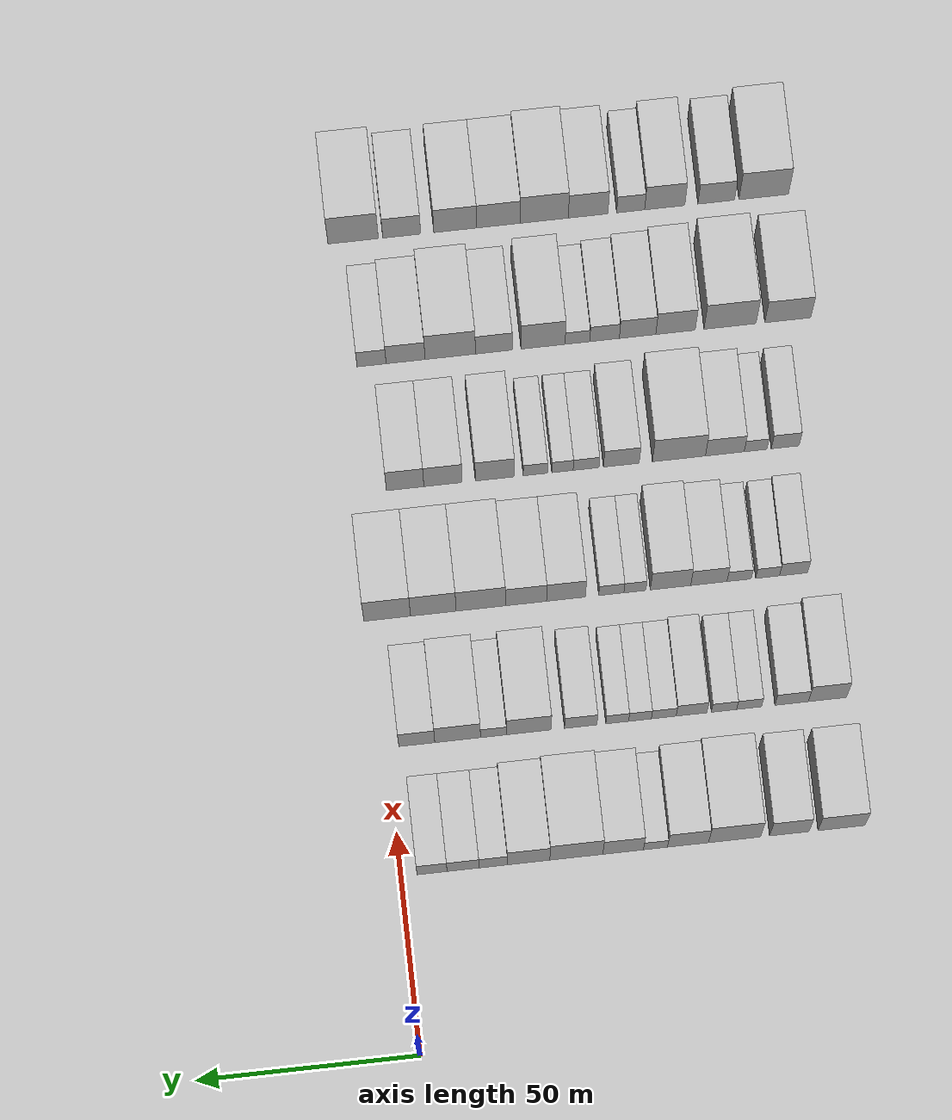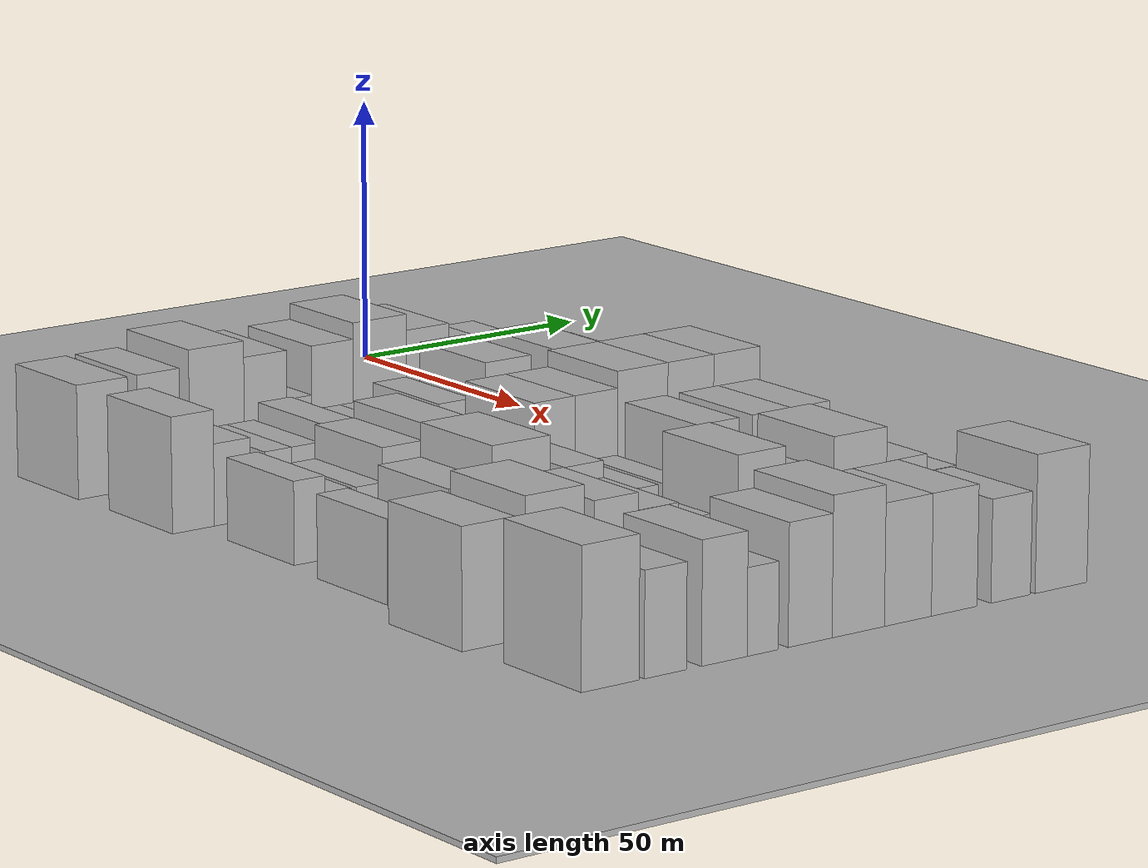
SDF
<sdf version="1.6">
 <world name="default">
  <include><name>ground_plane_1</name><uri>model://HANNAS_ground_plane</uri></include>
  <include>
   <name>ground_plane_2</name>
   <uri>model://HANNAS_ground_plane</uri>
   <pose>100 0 0  0 0 0</pose>
  </include>
  <model name="building_47">
   <static>1</static>
   <pose>50.0000 -98.2842 0 0.000000 0.000000 0.000000</pose>
   <link name="link">
    <pose>0 0 10.50 0 0 0</pose>
    <collision name="collision"><geometry><box><size>20.0000 10.4719 21.0000</size></box></geometry></collision>
    <visual name="visual">
     <cast_shadows>0</cast_shadows>
     <geometry><box><size>20.0000 10.4719 21.0000</size></box></geometry>
     <material>
      <script>
       <uri>model://HANNAS_wall/materials/scripts</uri>
       <uri>model://HANNAS_wall/materials/textures</uri>
       <name>vrc/HANNAS_wall</name>
      </script>
     </material>
    </visual>
   </link>
  </model>
  <model name="building_48">
   <static>1</static>
   <pose>50.0000 -86.6342 0 0.000000 0.000000 0.000000</pose>
   <link name="link">
    <pose>0 0 10.50 0 0 0</pose>
    <collision name="collision"><geometry><box><size>20.0000 8.8280 21.0000</size></box></geometry></collision>
    <visual name="visual">
     <cast_shadows>0</cast_shadows>
     <geometry><box><size>20.0000 8.8280 21.0000</size></box></geometry>
     <material>
      <script>
       <uri>model://HANNAS_wall/materials/scripts</uri>
       <uri>model://HANNAS_wall/materials/textures</uri>
       <name>vrc/HANNAS_wall</name>
      </script>
     </material>
    </visual>
   </link>
  </model>
  <model name="building_49">
   <static>1</static>
   <pose>50.0000 -74.3957 0 0.000000 0.000000 0.000000</pose>
   <link name="link">
    <pose>0 0 12.00 0 0 0</pose>
    <collision name="collision"><geometry><box><size>20.0000 11.6490 24.0000</size></box></geometry></collision>
    <visual name="visual">
     <cast_shadows>0</cast_shadows>
     <geometry><box><size>20.0000 11.6490 24.0000</size></box></geometry>
     <material>
      <script>
       <uri>model://HANNAS_wall/materials/scripts</uri>
       <uri>model://HANNAS_wall/materials/textures</uri>
       <name>vrc/HANNAS_wall</name>
      </script>
     </material>
    </visual>
   </link>
  </model>
  <model name="building_50">
   <static>1</static>
   <pose>50.0000 -63.9907 0 0.000000 0.000000 0.000000</pose>
   <link name="link">
    <pose>0 0 10.50 0 0 0</pose>
    <collision name="collision"><geometry><box><size>20.0000 9.1611 21.0000</size></box></geometry></collision>
    <visual name="visual">
     <cast_shadows>0</cast_shadows>
     <geometry><box><size>20.0000 9.1611 21.0000</size></box></geometry>
     <material>
      <script>
       <uri>model://HANNAS_wall/materials/scripts</uri>
       <uri>model://HANNAS_wall/materials/textures</uri>
       <name>vrc/HANNAS_wall</name>
      </script>
     </material>
    </visual>
   </link>
  </model>
  <model name="building_51">
   <static>1</static>
   <pose>50.0000 -56.7197 0 0.000000 0.000000 0.000000</pose>
   <link name="link">
    <pose>0 0 6.00 0 0 0</pose>
    <collision name="collision"><geometry><box><size>20.0000 5.3809 12.0000</size></box></geometry></collision>
    <visual name="visual">
     <cast_shadows>0</cast_shadows>
     <geometry><box><size>20.0000 5.3809 12.0000</size></box></geometry>
     <material>
      <script>
       <uri>model://HANNAS_wall/materials/scripts</uri>
       <uri>model://HANNAS_wall/materials/textures</uri>
       <name>vrc/HANNAS_wall</name>
      </script>
     </material>
    </visual>
   </link>
  </model>
  <model name="building_52">
   <static>1</static>
   <pose>50.0000 -49.4924 0 0.000000 0.000000 0.000000</pose>
   <link name="link">
    <pose>0 0 10.50 0 0 0</pose>
    <collision name="collision"><geometry><box><size>20.0000 9.0737 21.0000</size></box></geometry></collision>
    <visual name="visual">
     <cast_shadows>0</cast_shadows>
     <geometry><box><size>20.0000 9.0737 21.0000</size></box></geometry>
     <material>
      <script>
       <uri>model://HANNAS_wall/materials/scripts</uri>
       <uri>model://HANNAS_wall/materials/textures</uri>
       <name>vrc/HANNAS_wall</name>
      </script>
     </material>
    </visual>
   </link>
  </model>
  <model name="building_53">
   <static>1</static>
   <pose>50.0000 -39.0393 0 0.000000 0.000000 0.000000</pose>
   <link name="link">
    <pose>0 0 12.00 0 0 0</pose>
    <collision name="collision"><geometry><box><size>20.0000 11.8326 24.0000</size></box></geometry></collision>
    <visual name="visual">
     <cast_shadows>0</cast_shadows>
     <geometry><box><size>20.0000 11.8326 24.0000</size></box></geometry>
     <material>
      <script>
       <uri>model://HANNAS_wall/materials/scripts</uri>
       <uri>model://HANNAS_wall/materials/textures</uri>
       <name>vrc/HANNAS_wall</name>
      </script>
     </material>
    </visual>
   </link>
  </model>
  <model name="building_54">
   <static>1</static>
   <pose>50.0000 -28.3879 0 0.000000 0.000000 0.000000</pose>
   <link name="link">
    <pose>0 0 10.50 0 0 0</pose>
    <collision name="collision"><geometry><box><size>20.0000 9.4702 21.0000</size></box></geometry></collision>
    <visual name="visual">
     <cast_shadows>0</cast_shadows>
     <geometry><box><size>20.0000 9.4702 21.0000</size></box></geometry>
     <material>
      <script>
       <uri>model://HANNAS_wall/materials/scripts</uri>
       <uri>model://HANNAS_wall/materials/textures</uri>
       <name>vrc/HANNAS_wall</name>
      </script>
     </material>
    </visual>
   </link>
  </model>
  <model name="building_55">
   <static>1</static>
   <pose>50.0000 -20.5036 0 0.000000 0.000000 0.000000</pose>
   <link name="link">
    <pose>0 0 7.50 0 0 0</pose>
    <collision name="collision"><geometry><box><size>20.0000 6.2984 15.0000</size></box></geometry></collision>
    <visual name="visual">
     <cast_shadows>0</cast_shadows>
     <geometry><box><size>20.0000 6.2984 15.0000</size></box></geometry>
     <material>
      <script>
       <uri>model://HANNAS_wall/materials/scripts</uri>
       <uri>model://HANNAS_wall/materials/textures</uri>
       <name>vrc/HANNAS_wall</name>
      </script>
     </material>
    </visual>
   </link>
  </model>
  <model name="building_56">
   <static>1</static>
   <pose>50.0000 -13.7806 0 0.000000 0.000000 0.000000</pose>
   <link name="link">
    <pose>0 0 7.50 0 0 0</pose>
    <collision name="collision"><geometry><box><size>20.0000 7.1475 15.0000</size></box></geometry></collision>
    <visual name="visual">
     <cast_shadows>0</cast_shadows>
     <geometry><box><size>20.0000 7.1475 15.0000</size></box></geometry>
     <material>
      <script>
       <uri>model://HANNAS_wall/materials/scripts</uri>
       <uri>model://HANNAS_wall/materials/textures</uri>
       <name>vrc/HANNAS_wall</name>
      </script>
     </material>
    </visual>
   </link>
  </model>
  <model name="building_57">
   <static>1</static>
   <pose>50.0000 -6.8597 0 0.000000 0.000000 0.000000</pose>
   <link name="link">
    <pose>0 0 7.50 0 0 0</pose>
    <collision name="collision"><geometry><box><size>20.0000 6.6944 15.0000</size></box></geometry></collision>
    <visual name="visual">
     <cast_shadows>0</cast_shadows>
     <geometry><box><size>20.0000 6.6944 15.0000</size></box></geometry>
     <material>
      <script>
       <uri>model://HANNAS_wall/materials/scripts</uri>
       <uri>model://HANNAS_wall/materials/textures</uri>
       <name>vrc/HANNAS_wall</name>
      </script>
     </material>
    </visual>
   </link>
  </model>
  <model name="building_160">
   <static>1</static>
   <pose>79.0000 -98.6693 0 0.000000 0.000000 0.000000</pose>
   <link name="link">
    <pose>0 0 10.50 0 0 0</pose>
    <collision name="collision"><geometry><box><size>20.0000 8.5805 21.0000</size></box></geometry></collision>
    <visual name="visual">
     <cast_shadows>0</cast_shadows>
     <geometry><box><size>20.0000 8.5805 21.0000</size></box></geometry>
     <material>
      <script>
       <uri>model://HANNAS_wall/materials/scripts</uri>
       <uri>model://HANNAS_wall/materials/textures</uri>
       <name>vrc/HANNAS_wall</name>
      </script>
     </material>
    </visual>
   </link>
  </model>
  <model name="building_161">
   <static>1</static>
   <pose>79.0000 -90.6305 0 0.000000 0.000000 0.000000</pose>
   <link name="link">
    <pose>0 0 7.50 0 0 0</pose>
    <collision name="collision"><geometry><box><size>20.0000 7.4971 15.0000</size></box></geometry></collision>
    <visual name="visual">
     <cast_shadows>0</cast_shadows>
     <geometry><box><size>20.0000 7.4971 15.0000</size></box></geometry>
     <material>
      <script>
       <uri>model://HANNAS_wall/materials/scripts</uri>
       <uri>model://HANNAS_wall/materials/textures</uri>
       <name>vrc/HANNAS_wall</name>
      </script>
     </material>
    </visual>
   </link>
  </model>
  <model name="building_162">
   <static>1</static>
   <pose>79.0000 -81.0834 0 0.000000 0.000000 0.000000</pose>
   <link name="link">
    <pose>0 0 6.00 0 0 0</pose>
    <collision name="collision"><geometry><box><size>20.0000 5.5971 12.0000</size></box></geometry></collision>
    <visual name="visual">
     <cast_shadows>0</cast_shadows>
     <geometry><box><size>20.0000 5.5971 12.0000</size></box></geometry>
     <material>
      <script>
       <uri>model://HANNAS_wall/materials/scripts</uri>
       <uri>model://HANNAS_wall/materials/textures</uri>
       <name>vrc/HANNAS_wall</name>
      </script>
     </material>
    </visual>
   </link>
  </model>
  <model name="building_163">
   <static>1</static>
   <pose>79.0000 -75.4470 0 0.000000 0.000000 0.000000</pose>
   <link name="link">
    <pose>0 0 6.00 0 0 0</pose>
    <collision name="collision"><geometry><box><size>20.0000 5.6757 12.0000</size></box></geometry></collision>
    <visual name="visual">
     <cast_shadows>0</cast_shadows>
     <geometry><box><size>20.0000 5.6757 12.0000</size></box></geometry>
     <material>
      <script>
       <uri>model://HANNAS_wall/materials/scripts</uri>
       <uri>model://HANNAS_wall/materials/textures</uri>
       <name>vrc/HANNAS_wall</name>
      </script>
     </material>
    </visual>
   </link>
  </model>
  <model name="building_164">
   <static>1</static>
   <pose>79.0000 -68.1666 0 0.000000 0.000000 0.000000</pose>
   <link name="link">
    <pose>0 0 7.50 0 0 0</pose>
    <collision name="collision"><geometry><box><size>20.0000 6.8850 15.0000</size></box></geometry></collision>
    <visual name="visual">
     <cast_shadows>0</cast_shadows>
     <geometry><box><size>20.0000 6.8850 15.0000</size></box></geometry>
     <material>
      <script>
       <uri>model://HANNAS_wall/materials/scripts</uri>
       <uri>model://HANNAS_wall/materials/textures</uri>
       <name>vrc/HANNAS_wall</name>
      </script>
     </material>
    </visual>
   </link>
  </model>
  <model name="building_165">
   <static>1</static>
   <pose>79.0000 -61.9334 0 0.000000 0.000000 0.000000</pose>
   <link name="link">
    <pose>0 0 6.00 0 0 0</pose>
    <collision name="collision"><geometry><box><size>20.0000 5.5814 12.0000</size></box></geometry></collision>
    <visual name="visual">
     <cast_shadows>0</cast_shadows>
     <geometry><box><size>20.0000 5.5814 12.0000</size></box></geometry>
     <material>
      <script>
       <uri>model://HANNAS_wall/materials/scripts</uri>
       <uri>model://HANNAS_wall/materials/textures</uri>
       <name>vrc/HANNAS_wall</name>
      </script>
     </material>
    </visual>
   </link>
  </model>
  <model name="building_166">
   <static>1</static>
   <pose>79.0000 -56.6026 0 0.000000 0.000000 0.000000</pose>
   <link name="link">
    <pose>0 0 6.00 0 0 0</pose>
    <collision name="collision"><geometry><box><size>20.0000 5.0803 12.0000</size></box></geometry></collision>
    <visual name="visual">
     <cast_shadows>0</cast_shadows>
     <geometry><box><size>20.0000 5.0803 12.0000</size></box></geometry>
     <material>
      <script>
       <uri>model://HANNAS_wall/materials/scripts</uri>
       <uri>model://HANNAS_wall/materials/textures</uri>
       <name>vrc/HANNAS_wall</name>
      </script>
     </material>
    </visual>
   </link>
  </model>
  <model name="building_167">
   <static>1</static>
   <pose>79.0000 -51.5035 0 0.000000 0.000000 0.000000</pose>
   <link name="link">
    <pose>0 0 6.00 0 0 0</pose>
    <collision name="collision"><geometry><box><size>20.0000 5.1178 12.0000</size></box></geometry></collision>
    <visual name="visual">
     <cast_shadows>0</cast_shadows>
     <geometry><box><size>20.0000 5.1178 12.0000</size></box></geometry>
     <material>
      <script>
       <uri>model://HANNAS_wall/materials/scripts</uri>
       <uri>model://HANNAS_wall/materials/textures</uri>
       <name>vrc/HANNAS_wall</name>
      </script>
     </material>
    </visual>
   </link>
  </model>
  <model name="building_168">
   <static>1</static>
   <pose>79.0000 -43.3079 0 0.000000 0.000000 0.000000</pose>
   <link name="link">
    <pose>0 0 7.50 0 0 0</pose>
    <collision name="collision"><geometry><box><size>20.0000 7.2734 15.0000</size></box></geometry></collision>
    <visual name="visual">
     <cast_shadows>0</cast_shadows>
     <geometry><box><size>20.0000 7.2734 15.0000</size></box></geometry>
     <material>
      <script>
       <uri>model://HANNAS_wall/materials/scripts</uri>
       <uri>model://HANNAS_wall/materials/textures</uri>
       <name>vrc/HANNAS_wall</name>
      </script>
     </material>
    </visual>
   </link>
  </model>
  <model name="building_169">
   <static>1</static>
   <pose>79.0000 -31.6688 0 0.000000 0.000000 0.000000</pose>
   <link name="link">
    <pose>0 0 10.50 0 0 0</pose>
    <collision name="collision"><geometry><box><size>20.0000 10.0048 21.0000</size></box></geometry></collision>
    <visual name="visual">
     <cast_shadows>0</cast_shadows>
     <geometry><box><size>20.0000 10.0048 21.0000</size></box></geometry>
     <material>
      <script>
       <uri>model://HANNAS_wall/materials/scripts</uri>
       <uri>model://HANNAS_wall/materials/textures</uri>
       <name>vrc/HANNAS_wall</name>
      </script>
     </material>
    </visual>
   </link>
  </model>
  <model name="building_170">
   <static>1</static>
   <pose>79.0000 -23.7561 0 0.000000 0.000000 0.000000</pose>
   <link name="link">
    <pose>0 0 6.00 0 0 0</pose>
    <collision name="collision"><geometry><box><size>20.0000 5.8207 12.0000</size></box></geometry></collision>
    <visual name="visual">
     <cast_shadows>0</cast_shadows>
     <geometry><box><size>20.0000 5.8207 12.0000</size></box></geometry>
     <material>
      <script>
       <uri>model://HANNAS_wall/materials/scripts</uri>
       <uri>model://HANNAS_wall/materials/textures</uri>
       <name>vrc/HANNAS_wall</name>
      </script>
     </material>
    </visual>
   </link>
  </model>
  <model name="building_171">
   <static>1</static>
   <pose>79.0000 -15.7311 0 0.000000 0.000000 0.000000</pose>
   <link name="link">
    <pose>0 0 10.50 0 0 0</pose>
    <collision name="collision"><geometry><box><size>20.0000 10.2292 21.0000</size></box></geometry></collision>
    <visual name="visual">
     <cast_shadows>0</cast_shadows>
     <geometry><box><size>20.0000 10.2292 21.0000</size></box></geometry>
     <material>
      <script>
       <uri>model://HANNAS_wall/materials/scripts</uri>
       <uri>model://HANNAS_wall/materials/textures</uri>
       <name>vrc/HANNAS_wall</name>
      </script>
     </material>
    </visual>
   </link>
  </model>
  <model name="building_172">
   <static>1</static>
   <pose>79.0000 -6.5986 0 0.000000 0.000000 0.000000</pose>
   <link name="link">
    <pose>0 0 9.00 0 0 0</pose>
    <collision name="collision"><geometry><box><size>20.0000 8.0359 18.0000</size></box></geometry></collision>
    <visual name="visual">
     <cast_shadows>0</cast_shadows>
     <geometry><box><size>20.0000 8.0359 18.0000</size></box></geometry>
     <material>
      <script>
       <uri>model://HANNAS_wall/materials/scripts</uri>
       <uri>model://HANNAS_wall/materials/textures</uri>
       <name>vrc/HANNAS_wall</name>
      </script>
     </material>
    </visual>
   </link>
  </model>
  <model name="building_280">
   <static>1</static>
   <pose>108.0000 -94.5423 0 0.000000 0.000000 0.000000</pose>
   <link name="link">
    <pose>0 0 7.50 0 0 0</pose>
    <collision name="collision"><geometry><box><size>20.0000 6.3312 15.0000</size></box></geometry></collision>
    <visual name="visual">
     <cast_shadows>0</cast_shadows>
     <geometry><box><size>20.0000 6.3312 15.0000</size></box></geometry>
     <material>
      <script>
       <uri>model://HANNAS_wall/materials/scripts</uri>
       <uri>model://HANNAS_wall/materials/textures</uri>
       <name>vrc/HANNAS_wall</name>
      </script>
     </material>
    </visual>
   </link>
  </model>
  <model name="building_281">
   <static>1</static>
   <pose>108.0000 -88.6936 0 0.000000 0.000000 0.000000</pose>
   <link name="link">
    <pose>0 0 6.00 0 0 0</pose>
    <collision name="collision"><geometry><box><size>20.0000 5.3664 12.0000</size></box></geometry></collision>
    <visual name="visual">
     <cast_shadows>0</cast_shadows>
     <geometry><box><size>20.0000 5.3664 12.0000</size></box></geometry>
     <material>
      <script>
       <uri>model://HANNAS_wall/materials/scripts</uri>
       <uri>model://HANNAS_wall/materials/textures</uri>
       <name>vrc/HANNAS_wall</name>
      </script>
     </material>
    </visual>
   </link>
  </model>
  <model name="building_282">
   <static>1</static>
   <pose>108.0000 -82.2794 0 0.000000 0.000000 0.000000</pose>
   <link name="link">
    <pose>0 0 6.00 0 0 0</pose>
    <collision name="collision"><geometry><box><size>20.0000 5.4619 12.0000</size></box></geometry></collision>
    <visual name="visual">
     <cast_shadows>0</cast_shadows>
     <geometry><box><size>20.0000 5.4619 12.0000</size></box></geometry>
     <material>
      <script>
       <uri>model://HANNAS_wall/materials/scripts</uri>
       <uri>model://HANNAS_wall/materials/textures</uri>
       <name>vrc/HANNAS_wall</name>
      </script>
     </material>
    </visual>
   </link>
  </model>
  <model name="building_283">
   <static>1</static>
   <pose>108.0000 -75.4573 0 0.000000 0.000000 0.000000</pose>
   <link name="link">
    <pose>0 0 9.00 0 0 0</pose>
    <collision name="collision"><geometry><box><size>20.0000 8.1824 18.0000</size></box></geometry></collision>
    <visual name="visual">
     <cast_shadows>0</cast_shadows>
     <geometry><box><size>20.0000 8.1824 18.0000</size></box></geometry>
     <material>
      <script>
       <uri>model://HANNAS_wall/materials/scripts</uri>
       <uri>model://HANNAS_wall/materials/textures</uri>
       <name>vrc/HANNAS_wall</name>
      </script>
     </material>
    </visual>
   </link>
  </model>
  <model name="building_284">
   <static>1</static>
   <pose>108.0000 -66.8131 0 0.000000 0.000000 0.000000</pose>
   <link name="link">
    <pose>0 0 10.50 0 0 0</pose>
    <collision name="collision"><geometry><box><size>20.0000 9.1059 21.0000</size></box></geometry></collision>
    <visual name="visual">
     <cast_shadows>0</cast_shadows>
     <geometry><box><size>20.0000 9.1059 21.0000</size></box></geometry>
     <material>
      <script>
       <uri>model://HANNAS_wall/materials/scripts</uri>
       <uri>model://HANNAS_wall/materials/textures</uri>
       <name>vrc/HANNAS_wall</name>
      </script>
     </material>
    </visual>
   </link>
  </model>
  <model name="building_285">
   <static>1</static>
   <pose>108.0000 -58.7935 0 0.000000 0.000000 0.000000</pose>
   <link name="link">
    <pose>0 0 6.00 0 0 0</pose>
    <collision name="collision"><geometry><box><size>20.0000 4.9332 12.0000</size></box></geometry></collision>
    <visual name="visual">
     <cast_shadows>0</cast_shadows>
     <geometry><box><size>20.0000 4.9332 12.0000</size></box></geometry>
     <material>
      <script>
       <uri>model://HANNAS_wall/materials/scripts</uri>
       <uri>model://HANNAS_wall/materials/textures</uri>
       <name>vrc/HANNAS_wall</name>
      </script>
     </material>
    </visual>
   </link>
  </model>
  <model name="building_286">
   <static>1</static>
   <pose>108.0000 -53.4880 0 0.000000 0.000000 0.000000</pose>
   <link name="link">
    <pose>0 0 6.00 0 0 0</pose>
    <collision name="collision"><geometry><box><size>20.0000 5.6777 12.0000</size></box></geometry></collision>
    <visual name="visual">
     <cast_shadows>0</cast_shadows>
     <geometry><box><size>20.0000 5.6777 12.0000</size></box></geometry>
     <material>
      <script>
       <uri>model://HANNAS_wall/materials/scripts</uri>
       <uri>model://HANNAS_wall/materials/textures</uri>
       <name>vrc/HANNAS_wall</name>
      </script>
     </material>
    </visual>
   </link>
  </model>
  <model name="building_287">
   <static>1</static>
   <pose>108.0000 -43.2713 0 0.000000 0.000000 0.000000</pose>
   <link name="link">
    <pose>0 0 10.50 0 0 0</pose>
    <collision name="collision"><geometry><box><size>20.0000 8.7558 21.0000</size></box></geometry></collision>
    <visual name="visual">
     <cast_shadows>0</cast_shadows>
     <geometry><box><size>20.0000 8.7558 21.0000</size></box></geometry>
     <material>
      <script>
       <uri>model://HANNAS_wall/materials/scripts</uri>
       <uri>model://HANNAS_wall/materials/textures</uri>
       <name>vrc/HANNAS_wall</name>
      </script>
     </material>
    </visual>
   </link>
  </model>
  <model name="building_288">
   <static>1</static>
   <pose>108.0000 -34.2629 0 0.000000 0.000000 0.000000</pose>
   <link name="link">
    <pose>0 0 10.50 0 0 0</pose>
    <collision name="collision"><geometry><box><size>20.0000 9.2611 21.0000</size></box></geometry></collision>
    <visual name="visual">
     <cast_shadows>0</cast_shadows>
     <geometry><box><size>20.0000 9.2611 21.0000</size></box></geometry>
     <material>
      <script>
       <uri>model://HANNAS_wall/materials/scripts</uri>
       <uri>model://HANNAS_wall/materials/textures</uri>
       <name>vrc/HANNAS_wall</name>
      </script>
     </material>
    </visual>
   </link>
  </model>
  <model name="building_289">
   <static>1</static>
   <pose>108.0000 -24.0927 0 0.000000 0.000000 0.000000</pose>
   <link name="link">
    <pose>0 0 12.00 0 0 0</pose>
    <collision name="collision"><geometry><box><size>20.0000 11.0793 24.0000</size></box></geometry></collision>
    <visual name="visual">
     <cast_shadows>0</cast_shadows>
     <geometry><box><size>20.0000 11.0793 24.0000</size></box></geometry>
     <material>
      <script>
       <uri>model://HANNAS_wall/materials/scripts</uri>
       <uri>model://HANNAS_wall/materials/textures</uri>
       <name>vrc/HANNAS_wall</name>
      </script>
     </material>
    </visual>
   </link>
  </model>
  <model name="building_290">
   <static>1</static>
   <pose>108.0000 -13.4372 0 0.000000 0.000000 0.000000</pose>
   <link name="link">
    <pose>0 0 12.00 0 0 0</pose>
    <collision name="collision"><geometry><box><size>20.0000 10.2318 24.0000</size></box></geometry></collision>
    <visual name="visual">
     <cast_shadows>0</cast_shadows>
     <geometry><box><size>20.0000 10.2318 24.0000</size></box></geometry>
     <material>
      <script>
       <uri>model://HANNAS_wall/materials/scripts</uri>
       <uri>model://HANNAS_wall/materials/textures</uri>
       <name>vrc/HANNAS_wall</name>
      </script>
     </material>
    </visual>
   </link>
  </model>
  <model name="building_291">
   <static>1</static>
   <pose>108.0000 -3.0869 0 0.000000 0.000000 0.000000</pose>
   <link name="link">
    <pose>0 0 12.00 0 0 0</pose>
    <collision name="collision"><geometry><box><size>20.0000 10.4687 24.0000</size></box></geometry></collision>
    <visual name="visual">
     <cast_shadows>0</cast_shadows>
     <geometry><box><size>20.0000 10.4687 24.0000</size></box></geometry>
     <material>
      <script>
       <uri>model://HANNAS_wall/materials/scripts</uri>
       <uri>model://HANNAS_wall/materials/textures</uri>
       <name>vrc/HANNAS_wall</name>
      </script>
     </material>
    </visual>
   </link>
  </model>
  <model name="building_392">
   <static>1</static>
   <pose>137.0000 -96.1260 0 0.000000 0.000000 0.000000</pose>
   <link name="link">
    <pose>0 0 7.50 0 0 0</pose>
    <collision name="collision"><geometry><box><size>20.0000 6.2830 15.0000</size></box></geometry></collision>
    <visual name="visual">
     <cast_shadows>0</cast_shadows>
     <geometry><box><size>20.0000 6.2830 15.0000</size></box></geometry>
     <material>
      <script>
       <uri>model://HANNAS_wall/materials/scripts</uri>
       <uri>model://HANNAS_wall/materials/textures</uri>
       <name>vrc/HANNAS_wall</name>
      </script>
     </material>
    </visual>
   </link>
  </model>
  <model name="building_393">
   <static>1</static>
   <pose>137.0000 -89.4196 0 0.000000 0.000000 0.000000</pose>
   <link name="link">
    <pose>0 0 6.00 0 0 0</pose>
    <collision name="collision"><geometry><box><size>20.0000 5.1297 12.0000</size></box></geometry></collision>
    <visual name="visual">
     <cast_shadows>0</cast_shadows>
     <geometry><box><size>20.0000 5.1297 12.0000</size></box></geometry>
     <material>
      <script>
       <uri>model://HANNAS_wall/materials/scripts</uri>
       <uri>model://HANNAS_wall/materials/textures</uri>
       <name>vrc/HANNAS_wall</name>
      </script>
     </material>
    </visual>
   </link>
  </model>
  <model name="building_394">
   <static>1</static>
   <pose>137.0000 -82.4676 0 0.000000 0.000000 0.000000</pose>
   <link name="link">
    <pose>0 0 9.00 0 0 0</pose>
    <collision name="collision"><geometry><box><size>20.0000 8.7743 18.0000</size></box></geometry></collision>
    <visual name="visual">
     <cast_shadows>0</cast_shadows>
     <geometry><box><size>20.0000 8.7743 18.0000</size></box></geometry>
     <material>
      <script>
       <uri>model://HANNAS_wall/materials/scripts</uri>
       <uri>model://HANNAS_wall/materials/textures</uri>
       <name>vrc/HANNAS_wall</name>
      </script>
     </material>
    </visual>
   </link>
  </model>
  <model name="building_395">
   <static>1</static>
   <pose>137.0000 -72.0894 0 0.000000 0.000000 0.000000</pose>
   <link name="link">
    <pose>0 0 12.00 0 0 0</pose>
    <collision name="collision"><geometry><box><size>20.0000 11.9821 24.0000</size></box></geometry></collision>
    <visual name="visual">
     <cast_shadows>0</cast_shadows>
     <geometry><box><size>20.0000 11.9821 24.0000</size></box></geometry>
     <material>
      <script>
       <uri>model://HANNAS_wall/materials/scripts</uri>
       <uri>model://HANNAS_wall/materials/textures</uri>
       <name>vrc/HANNAS_wall</name>
      </script>
     </material>
    </visual>
   </link>
  </model>
  <model name="building_396">
   <static>1</static>
   <pose>137.0000 -59.0591 0 0.000000 0.000000 0.000000</pose>
   <link name="link">
    <pose>0 0 9.00 0 0 0</pose>
    <collision name="collision"><geometry><box><size>20.0000 8.0787 18.0000</size></box></geometry></collision>
    <visual name="visual">
     <cast_shadows>0</cast_shadows>
     <geometry><box><size>20.0000 8.0787 18.0000</size></box></geometry>
     <material>
      <script>
       <uri>model://HANNAS_wall/materials/scripts</uri>
       <uri>model://HANNAS_wall/materials/textures</uri>
       <name>vrc/HANNAS_wall</name>
      </script>
     </material>
    </visual>
   </link>
  </model>
  <model name="building_397">
   <static>1</static>
   <pose>137.0000 -51.0906 0 0.000000 0.000000 0.000000</pose>
   <link name="link">
    <pose>0 0 6.00 0 0 0</pose>
    <collision name="collision"><geometry><box><size>20.0000 5.8583 12.0000</size></box></geometry></collision>
    <visual name="visual">
     <cast_shadows>0</cast_shadows>
     <geometry><box><size>20.0000 5.8583 12.0000</size></box></geometry>
     <material>
      <script>
       <uri>model://HANNAS_wall/materials/scripts</uri>
       <uri>model://HANNAS_wall/materials/textures</uri>
       <name>vrc/HANNAS_wall</name>
      </script>
     </material>
    </visual>
   </link>
  </model>
  <model name="building_398">
   <static>1</static>
   <pose>137.0000 -45.7578 0 0.000000 0.000000 0.000000</pose>
   <link name="link">
    <pose>0 0 6.00 0 0 0</pose>
    <collision name="collision"><geometry><box><size>20.0000 4.8073 12.0000</size></box></geometry></collision>
    <visual name="visual">
     <cast_shadows>0</cast_shadows>
     <geometry><box><size>20.0000 4.8073 12.0000</size></box></geometry>
     <material>
      <script>
       <uri>model://HANNAS_wall/materials/scripts</uri>
       <uri>model://HANNAS_wall/materials/textures</uri>
       <name>vrc/HANNAS_wall</name>
      </script>
     </material>
    </visual>
   </link>
  </model>
  <model name="building_399">
   <static>1</static>
   <pose>137.0000 -39.6219 0 0.000000 0.000000 0.000000</pose>
   <link name="link">
    <pose>0 0 6.00 0 0 0</pose>
    <collision name="collision"><geometry><box><size>20.0000 5.4645 12.0000</size></box></geometry></collision>
    <visual name="visual">
     <cast_shadows>0</cast_shadows>
     <geometry><box><size>20.0000 5.4645 12.0000</size></box></geometry>
     <material>
      <script>
       <uri>model://HANNAS_wall/materials/scripts</uri>
       <uri>model://HANNAS_wall/materials/textures</uri>
       <name>vrc/HANNAS_wall</name>
      </script>
     </material>
    </visual>
   </link>
  </model>
  <model name="building_400">
   <static>1</static>
   <pose>137.0000 -30.4905 0 0.000000 0.000000 0.000000</pose>
   <link name="link">
    <pose>0 0 10.50 0 0 0</pose>
    <collision name="collision"><geometry><box><size>20.0000 8.7983 21.0000</size></box></geometry></collision>
    <visual name="visual">
     <cast_shadows>0</cast_shadows>
     <geometry><box><size>20.0000 8.7983 21.0000</size></box></geometry>
     <material>
      <script>
       <uri>model://HANNAS_wall/materials/scripts</uri>
       <uri>model://HANNAS_wall/materials/textures</uri>
       <name>vrc/HANNAS_wall</name>
      </script>
     </material>
    </visual>
   </link>
  </model>
  <model name="building_401">
   <static>1</static>
   <pose>137.0000 -18.7715 0 0.000000 0.000000 0.000000</pose>
   <link name="link">
    <pose>0 0 10.50 0 0 0</pose>
    <collision name="collision"><geometry><box><size>20.0000 8.6399 21.0000</size></box></geometry></collision>
    <visual name="visual">
     <cast_shadows>0</cast_shadows>
     <geometry><box><size>20.0000 8.6399 21.0000</size></box></geometry>
     <material>
      <script>
       <uri>model://HANNAS_wall/materials/scripts</uri>
       <uri>model://HANNAS_wall/materials/textures</uri>
       <name>vrc/HANNAS_wall</name>
      </script>
     </material>
    </visual>
   </link>
  </model>
  <model name="building_402">
   <static>1</static>
   <pose>137.0000 -10.2295 0 0.000000 0.000000 0.000000</pose>
   <link name="link">
    <pose>0 0 10.50 0 0 0</pose>
    <collision name="collision"><geometry><box><size>20.0000 8.4441 21.0000</size></box></geometry></collision>
    <visual name="visual">
     <cast_shadows>0</cast_shadows>
     <geometry><box><size>20.0000 8.4441 21.0000</size></box></geometry>
     <material>
      <script>
       <uri>model://HANNAS_wall/materials/scripts</uri>
       <uri>model://HANNAS_wall/materials/textures</uri>
       <name>vrc/HANNAS_wall</name>
      </script>
     </material>
    </visual>
   </link>
  </model>
  <model name="building_503">
   <static>1</static>
   <pose>166.0000 -100.2065 0 0.000000 0.000000 0.000000</pose>
   <link name="link">
    <pose>0 0 10.50 0 0 0</pose>
    <collision name="collision"><geometry><box><size>20.0000 10.4550 21.0000</size></box></geometry></collision>
    <visual name="visual">
     <cast_shadows>0</cast_shadows>
     <geometry><box><size>20.0000 10.4550 21.0000</size></box></geometry>
     <material>
      <script>
       <uri>model://HANNAS_wall/materials/scripts</uri>
       <uri>model://HANNAS_wall/materials/textures</uri>
       <name>vrc/HANNAS_wall</name>
      </script>
     </material>
    </visual>
   </link>
  </model>
  <model name="building_504">
   <static>1</static>
   <pose>166.0000 -87.0701 0 0.000000 0.000000 0.000000</pose>
   <link name="link">
    <pose>0 0 12.00 0 0 0</pose>
    <collision name="collision"><geometry><box><size>20.0000 11.8178 24.0000</size></box></geometry></collision>
    <visual name="visual">
     <cast_shadows>0</cast_shadows>
     <geometry><box><size>20.0000 11.8178 24.0000</size></box></geometry>
     <material>
      <script>
       <uri>model://HANNAS_wall/materials/scripts</uri>
       <uri>model://HANNAS_wall/materials/textures</uri>
       <name>vrc/HANNAS_wall</name>
      </script>
     </material>
    </visual>
   </link>
  </model>
  <model name="building_505">
   <static>1</static>
   <pose>166.0000 -74.6846 0 0.000000 0.000000 0.000000</pose>
   <link name="link">
    <pose>0 0 10.50 0 0 0</pose>
    <collision name="collision"><geometry><box><size>20.0000 8.9532 21.0000</size></box></geometry></collision>
    <visual name="visual">
     <cast_shadows>0</cast_shadows>
     <geometry><box><size>20.0000 8.9532 21.0000</size></box></geometry>
     <material>
      <script>
       <uri>model://HANNAS_wall/materials/scripts</uri>
       <uri>model://HANNAS_wall/materials/textures</uri>
       <name>vrc/HANNAS_wall</name>
      </script>
     </material>
    </visual>
   </link>
  </model>
  <model name="building_506">
   <static>1</static>
   <pose>166.0000 -66.0701 0 0.000000 0.000000 0.000000</pose>
   <link name="link">
    <pose>0 0 9.00 0 0 0</pose>
    <collision name="collision"><geometry><box><size>20.0000 8.2759 18.0000</size></box></geometry></collision>
    <visual name="visual">
     <cast_shadows>0</cast_shadows>
     <geometry><box><size>20.0000 8.2759 18.0000</size></box></geometry>
     <material>
      <script>
       <uri>model://HANNAS_wall/materials/scripts</uri>
       <uri>model://HANNAS_wall/materials/textures</uri>
       <name>vrc/HANNAS_wall</name>
      </script>
     </material>
    </visual>
   </link>
  </model>
  <model name="building_507">
   <static>1</static>
   <pose>166.0000 -58.5770 0 0.000000 0.000000 0.000000</pose>
   <link name="link">
    <pose>0 0 7.50 0 0 0</pose>
    <collision name="collision"><geometry><box><size>20.0000 6.7102 15.0000</size></box></geometry></collision>
    <visual name="visual">
     <cast_shadows>0</cast_shadows>
     <geometry><box><size>20.0000 6.7102 15.0000</size></box></geometry>
     <material>
      <script>
       <uri>model://HANNAS_wall/materials/scripts</uri>
       <uri>model://HANNAS_wall/materials/textures</uri>
       <name>vrc/HANNAS_wall</name>
      </script>
     </material>
    </visual>
   </link>
  </model>
  <model name="building_508">
   <static>1</static>
   <pose>166.0000 -52.4155 0 0.000000 0.000000 0.000000</pose>
   <link name="link">
    <pose>0 0 6.00 0 0 0</pose>
    <collision name="collision"><geometry><box><size>20.0000 5.6129 12.0000</size></box></geometry></collision>
    <visual name="visual">
     <cast_shadows>0</cast_shadows>
     <geometry><box><size>20.0000 5.6129 12.0000</size></box></geometry>
     <material>
      <script>
       <uri>model://HANNAS_wall/materials/scripts</uri>
       <uri>model://HANNAS_wall/materials/textures</uri>
       <name>vrc/HANNAS_wall</name>
      </script>
     </material>
    </visual>
   </link>
  </model>
  <model name="building_509">
   <static>1</static>
   <pose>166.0000 -44.6095 0 0.000000 0.000000 0.000000</pose>
   <link name="link">
    <pose>0 0 12.00 0 0 0</pose>
    <collision name="collision"><geometry><box><size>20.0000 9.9990 24.0000</size></box></geometry></collision>
    <visual name="visual">
     <cast_shadows>0</cast_shadows>
     <geometry><box><size>20.0000 9.9990 24.0000</size></box></geometry>
     <material>
      <script>
       <uri>model://HANNAS_wall/materials/scripts</uri>
       <uri>model://HANNAS_wall/materials/textures</uri>
       <name>vrc/HANNAS_wall</name>
      </script>
     </material>
    </visual>
   </link>
  </model>
  <model name="building_510">
   <static>1</static>
   <pose>166.0000 -33.4449 0 0.000000 0.000000 0.000000</pose>
   <link name="link">
    <pose>0 0 9.00 0 0 0</pose>
    <collision name="collision"><geometry><box><size>20.0000 8.3301 18.0000</size></box></geometry></collision>
    <visual name="visual">
     <cast_shadows>0</cast_shadows>
     <geometry><box><size>20.0000 8.3301 18.0000</size></box></geometry>
     <material>
      <script>
       <uri>model://HANNAS_wall/materials/scripts</uri>
       <uri>model://HANNAS_wall/materials/textures</uri>
       <name>vrc/HANNAS_wall</name>
      </script>
     </material>
    </visual>
   </link>
  </model>
  <model name="building_511">
   <static>1</static>
   <pose>166.0000 -23.5692 0 0.000000 0.000000 0.000000</pose>
   <link name="link">
    <pose>0 0 12.00 0 0 0</pose>
    <collision name="collision"><geometry><box><size>20.0000 11.4214 24.0000</size></box></geometry></collision>
    <visual name="visual">
     <cast_shadows>0</cast_shadows>
     <geometry><box><size>20.0000 11.4214 24.0000</size></box></geometry>
     <material>
      <script>
       <uri>model://HANNAS_wall/materials/scripts</uri>
       <uri>model://HANNAS_wall/materials/textures</uri>
       <name>vrc/HANNAS_wall</name>
      </script>
     </material>
    </visual>
   </link>
  </model>
  <model name="building_512">
   <static>1</static>
   <pose>166.0000 -13.4437 0 0.000000 0.000000 0.000000</pose>
   <link name="link">
    <pose>0 0 9.00 0 0 0</pose>
    <collision name="collision"><geometry><box><size>20.0000 8.8296 18.0000</size></box></geometry></collision>
    <visual name="visual">
     <cast_shadows>0</cast_shadows>
     <geometry><box><size>20.0000 8.8296 18.0000</size></box></geometry>
     <material>
      <script>
       <uri>model://HANNAS_wall/materials/scripts</uri>
       <uri>model://HANNAS_wall/materials/textures</uri>
       <name>vrc/HANNAS_wall</name>
      </script>
     </material>
    </visual>
   </link>
  </model>
  <model name="building_513">
   <static>1</static>
   <pose>166.0000 -5.7353 0 0.000000 0.000000 0.000000</pose>
   <link name="link">
    <pose>0 0 7.50 0 0 0</pose>
    <collision name="collision"><geometry><box><size>20.0000 6.5872 15.0000</size></box></geometry></collision>
    <visual name="visual">
     <cast_shadows>0</cast_shadows>
     <geometry><box><size>20.0000 6.5872 15.0000</size></box></geometry>
     <material>
      <script>
       <uri>model://HANNAS_wall/materials/scripts</uri>
       <uri>model://HANNAS_wall/materials/textures</uri>
       <name>vrc/HANNAS_wall</name>
      </script>
     </material>
    </visual>
   </link>
  </model>
  <model name="building_619">
   <static>1</static>
   <pose>195.0000 -98.1790 0 0.000000 0.000000 0.000000</pose>
   <link name="link">
    <pose>0 0 12.00 0 0 0</pose>
    <collision name="collision"><geometry><box><size>20.0000 11.3067 24.0000</size></box></geometry></collision>
    <visual name="visual">
     <cast_shadows>0</cast_shadows>
     <geometry><box><size>20.0000 11.3067 24.0000</size></box></geometry>
     <material>
      <script>
       <uri>model://HANNAS_wall/materials/scripts</uri>
       <uri>model://HANNAS_wall/materials/textures</uri>
       <name>vrc/HANNAS_wall</name>
      </script>
     </material>
    </visual>
   </link>
  </model>
  <model name="building_620">
   <static>1</static>
   <pose>195.0000 -87.3470 0 0.000000 0.000000 0.000000</pose>
   <link name="link">
    <pose>0 0 9.00 0 0 0</pose>
    <collision name="collision"><geometry><box><size>20.0000 8.3574 18.0000</size></box></geometry></collision>
    <visual name="visual">
     <cast_shadows>0</cast_shadows>
     <geometry><box><size>20.0000 8.3574 18.0000</size></box></geometry>
     <material>
      <script>
       <uri>model://HANNAS_wall/materials/scripts</uri>
       <uri>model://HANNAS_wall/materials/textures</uri>
       <name>vrc/HANNAS_wall</name>
      </script>
     </material>
    </visual>
   </link>
  </model>
  <model name="building_621">
   <static>1</static>
   <pose>195.0000 -75.5918 0 0.000000 0.000000 0.000000</pose>
   <link name="link">
    <pose>0 0 10.50 0 0 0</pose>
    <collision name="collision"><geometry><box><size>20.0000 9.1531 21.0000</size></box></geometry></collision>
    <visual name="visual">
     <cast_shadows>0</cast_shadows>
     <geometry><box><size>20.0000 9.1531 21.0000</size></box></geometry>
     <material>
      <script>
       <uri>model://HANNAS_wall/materials/scripts</uri>
       <uri>model://HANNAS_wall/materials/textures</uri>
       <name>vrc/HANNAS_wall</name>
      </script>
     </material>
    </visual>
   </link>
  </model>
  <model name="building_622">
   <static>1</static>
   <pose>195.0000 -67.8300 0 0.000000 0.000000 0.000000</pose>
   <link name="link">
    <pose>0 0 7.50 0 0 0</pose>
    <collision name="collision"><geometry><box><size>20.0000 6.3703 15.0000</size></box></geometry></collision>
    <visual name="visual">
     <cast_shadows>0</cast_shadows>
     <geometry><box><size>20.0000 6.3703 15.0000</size></box></geometry>
     <material>
      <script>
       <uri>model://HANNAS_wall/materials/scripts</uri>
       <uri>model://HANNAS_wall/materials/textures</uri>
       <name>vrc/HANNAS_wall</name>
      </script>
     </material>
    </visual>
   </link>
  </model>
  <model name="building_623">
   <static>1</static>
   <pose>195.0000 -58.1343 0 0.000000 0.000000 0.000000</pose>
   <link name="link">
    <pose>0 0 10.50 0 0 0</pose>
    <collision name="collision"><geometry><box><size>20.0000 9.0212 21.0000</size></box></geometry></collision>
    <visual name="visual">
     <cast_shadows>0</cast_shadows>
     <geometry><box><size>20.0000 9.0212 21.0000</size></box></geometry>
     <material>
      <script>
       <uri>model://HANNAS_wall/materials/scripts</uri>
       <uri>model://HANNAS_wall/materials/textures</uri>
       <name>vrc/HANNAS_wall</name>
      </script>
     </material>
    </visual>
   </link>
  </model>
  <model name="building_624">
   <static>1</static>
   <pose>195.0000 -48.1598 0 0.000000 0.000000 0.000000</pose>
   <link name="link">
    <pose>0 0 12.00 0 0 0</pose>
    <collision name="collision"><geometry><box><size>20.0000 10.9277 24.0000</size></box></geometry></collision>
    <visual name="visual">
     <cast_shadows>0</cast_shadows>
     <geometry><box><size>20.0000 10.9277 24.0000</size></box></geometry>
     <material>
      <script>
       <uri>model://HANNAS_wall/materials/scripts</uri>
       <uri>model://HANNAS_wall/materials/textures</uri>
       <name>vrc/HANNAS_wall</name>
      </script>
     </material>
    </visual>
   </link>
  </model>
  <model name="building_625">
   <static>1</static>
   <pose>195.0000 -37.7263 0 0.000000 0.000000 0.000000</pose>
   <link name="link">
    <pose>0 0 10.50 0 0 0</pose>
    <collision name="collision"><geometry><box><size>20.0000 9.9393 21.0000</size></box></geometry></collision>
    <visual name="visual">
     <cast_shadows>0</cast_shadows>
     <geometry><box><size>20.0000 9.9393 21.0000</size></box></geometry>
     <material>
      <script>
       <uri>model://HANNAS_wall/materials/scripts</uri>
       <uri>model://HANNAS_wall/materials/textures</uri>
       <name>vrc/HANNAS_wall</name>
      </script>
     </material>
    </visual>
   </link>
  </model>
  <model name="building_626">
   <static>1</static>
   <pose>195.0000 -27.8683 0 0.000000 0.000000 0.000000</pose>
   <link name="link">
    <pose>0 0 10.50 0 0 0</pose>
    <collision name="collision"><geometry><box><size>20.0000 9.7768 21.0000</size></box></geometry></collision>
    <visual name="visual">
     <cast_shadows>0</cast_shadows>
     <geometry><box><size>20.0000 9.7768 21.0000</size></box></geometry>
     <material>
      <script>
       <uri>model://HANNAS_wall/materials/scripts</uri>
       <uri>model://HANNAS_wall/materials/textures</uri>
       <name>vrc/HANNAS_wall</name>
      </script>
     </material>
    </visual>
   </link>
  </model>
  <model name="building_627">
   <static>1</static>
   <pose>195.0000 -15.6662 0 0.000000 0.000000 0.000000</pose>
   <link name="link">
    <pose>0 0 9.00 0 0 0</pose>
    <collision name="collision"><geometry><box><size>20.0000 8.6273 18.0000</size></box></geometry></collision>
    <visual name="visual">
     <cast_shadows>0</cast_shadows>
     <geometry><box><size>20.0000 8.6273 18.0000</size></box></geometry>
     <material>
      <script>
       <uri>model://HANNAS_wall/materials/scripts</uri>
       <uri>model://HANNAS_wall/materials/textures</uri>
       <name>vrc/HANNAS_wall</name>
      </script>
     </material>
    </visual>
   </link>
  </model>
  <model name="building_628">
   <static>1</static>
   <pose>195.0000 -4.6285 0 0.000000 0.000000 0.000000</pose>
   <link name="link">
    <pose>0 0 12.00 0 0 0</pose>
    <collision name="collision"><geometry><box><size>20.0000 11.4482 24.0000</size></box></geometry></collision>
    <visual name="visual">
     <cast_shadows>0</cast_shadows>
     <geometry><box><size>20.0000 11.4482 24.0000</size></box></geometry>
     <material>
      <script>
       <uri>model://HANNAS_wall/materials/scripts</uri>
       <uri>model://HANNAS_wall/materials/textures</uri>
       <name>vrc/HANNAS_wall</name>
      </script>
     </material>
    </visual>
   </link>
  </model>
 </world>
</sdf>
